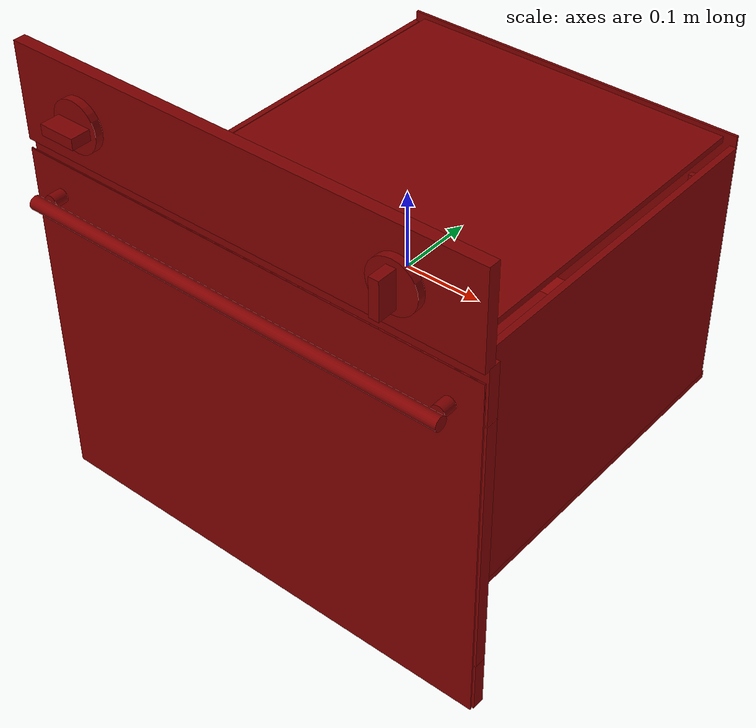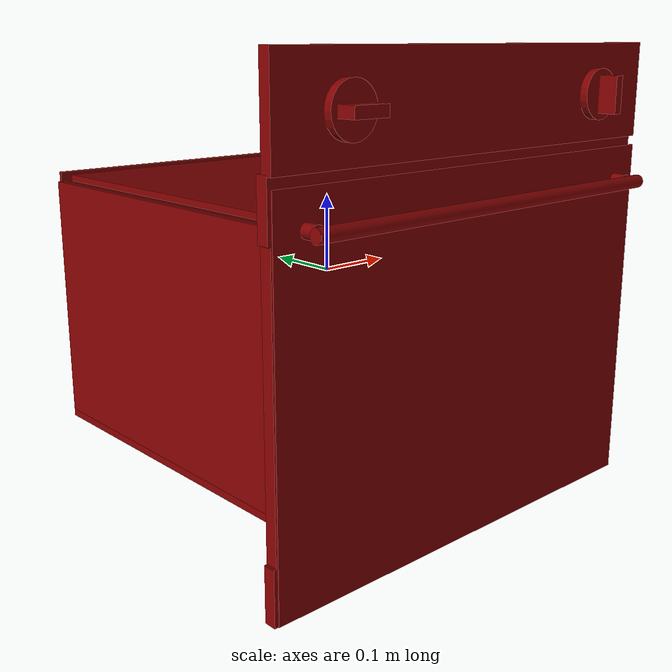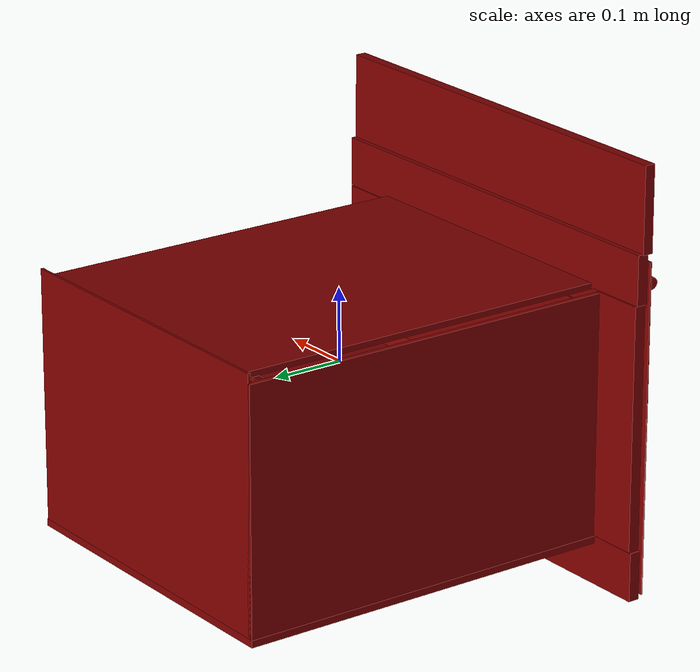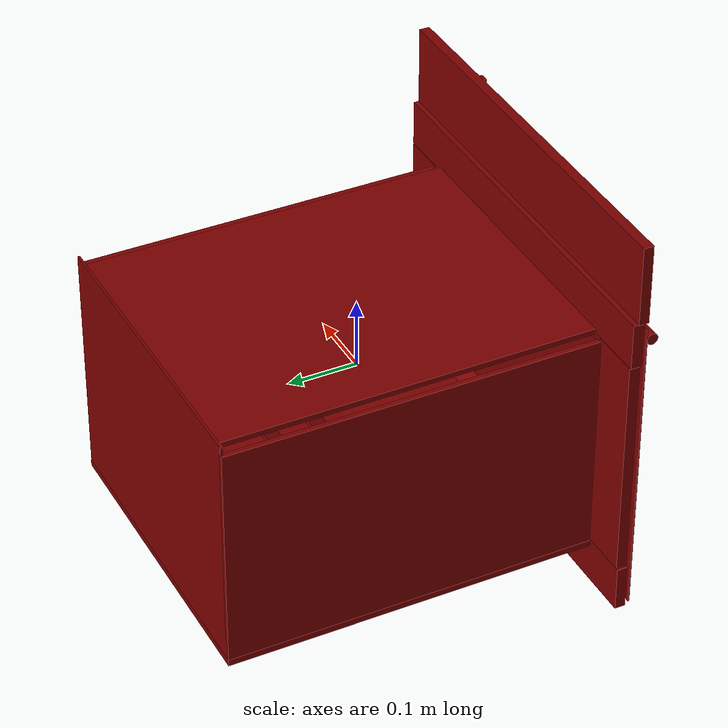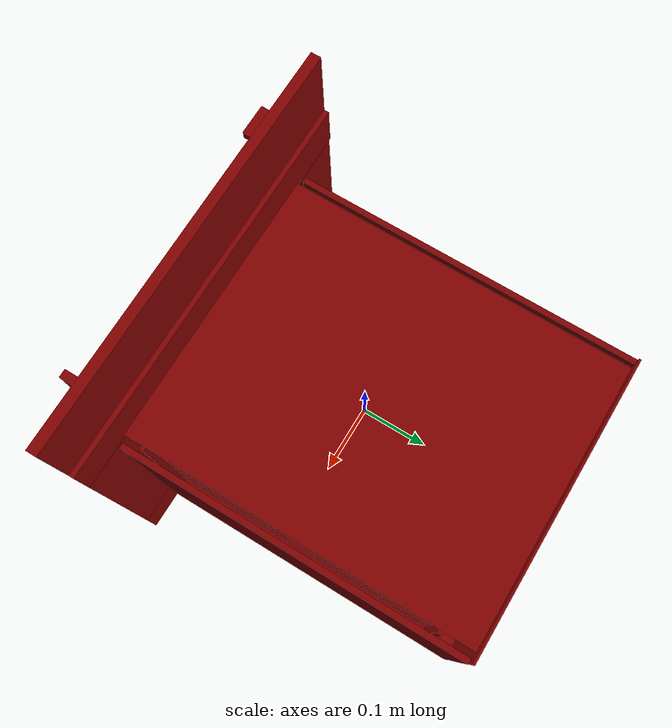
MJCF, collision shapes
<?xml version='1.0' encoding='UTF-8'?>
<mujoco model="model">
  <option timestep="0.002" gravity="0.0 0.0 -9.81"/>
  <compiler angle="radian"/>
  <asset>
    <mesh file="visuals/door.obj" name="door_vis"/>
    <mesh file="visuals/door_Clear.obj" name="door_Clear_vis"/>
    <mesh file="visuals/knob_temp.obj" name="knob_temp_vis"/>
    <mesh file="visuals/knob_time.obj" name="knob_time_vis"/>
    <mesh file="visuals/Body001.obj" name="Body001_vis"/>
    <mesh file="visuals/rack0.obj" name="rack0_vis"/>
    <mesh file="visuals/rack1.obj" name="rack1_vis"/>
    <texture file="visuals/T_BC001.png" name="Body001_material" type="2d"/>
    <material name="Body001_material" rgba="1 1 1 1.0" texture="Body001_material" shininess="2" specular="2"/>
    <texture file="visuals/T_BC001.png" name="door_material" type="2d"/>
    <material name="door_material" rgba="1 1 1 1.0" texture="door_material" shininess="2" specular="2"/>
    <texture file="visuals/T_BC001.png" name="door_Clear_material" type="2d"/>
    <material name="door_Clear_material" rgba="1 1 1 0.800000011920929" texture="door_Clear_material" shininess="0.5" specular="0.3103448502657381"/>
    <texture file="visuals/T_BC001.png" name="knob_temp_material" type="2d"/>
    <material name="knob_temp_material" rgba="1 1 1 1.0" texture="knob_temp_material" shininess="2" specular="2"/>
    <texture file="visuals/T_BC001.png" name="knob_time_material" type="2d"/>
    <material name="knob_time_material" rgba="1 1 1 1.0" texture="knob_time_material" shininess="2" specular="2"/>
    <texture file="visuals/T_BC001.png" name="rack0_material" type="2d"/>
    <material name="rack0_material" rgba="1 1 1 1.0" texture="rack0_material" shininess="10" specular="10"/>
    <texture file="visuals/T_BC001.png" name="rack1_material" type="2d"/>
    <material name="rack1_material" rgba="1 1 1 1.0" texture="rack1_material" shininess="10" specular="10"/>
  </asset>
  <default>
    <default class="visual">
      <geom conaffinity="0" contype="0" group="1" type="mesh"/>
    </default>
    <default class="collision">
      <geom group="0" rgba="0.5 0 0 0.5"/>
    </default>
    <default class="spawn">
      <geom group="0" rgba="1 1 1 0.5" contype="0" conaffinity="0"/>
      <site group="0" rgba="1 1 1 0.5"/>
    </default>
    <default class="region">
      <geom group="1" conaffinity="0" contype="0" rgba="0 1 0 0"/>
    </default>
  </default>
  <worldbody>
    <body>
      <body name="object">
        <geom mesh="Body001_vis" type="mesh" solimp="0.998 0.998 0.001" solref="0.001 1" friction="0.95 0.3 0.1" class="visual" material="Body001_material"/>
        <geom class="collision" type="box" pos="0.004257142543792725 0.29582837224006653 -0.0529102087020874" size="0.22952304780483246 0.0017778400797396898 0.1740211695432663" quat="1.0 0.0 0.0 0.0"/>
        <geom class="collision" type="box" pos="0.23214790225028992 0.02717023715376854 -0.057257432490587234" size="0.0042505525052547455 0.2641582190990448 0.16595187783241272" quat="1.0 0.0 0.0 0.0"/>
        <geom class="collision" type="box" pos="-0.224727064371109 0.029989678412675858 -0.057878464460372925" size="0.0037652181927114725 0.26761651039123535 0.16595187783241272" quat="1.0 0.0 0.0 0.0"/>
        <geom class="collision" type="box" pos="0.003983643371611834 0.024439111351966858 0.11233504116535187" size="0.21423636376857758 0.26748934388160706 0.004080869723111391" quat="1.0 0.0 0.0 0.0"/>
        <geom class="collision" type="box" pos="0.0033500767312943935 0.026148568838834763 -0.22870412468910217" size="0.23182912170886993 0.27145856618881226 0.005052439868450165" quat="1.0 0.0 0.0 0.0"/>
        <geom class="collision" type="box" pos="2.8462620704772235e-08 -0.2542492747306824 0.2345203161239624" size="0.2994057536125183 0.0074152639135718346 0.05844840779900551" quat="1.0 0.0 0.0 0.0"/>
        <geom class="collision" type="box" pos="3.04707867826437e-08 -0.2471369355916977 0.14411506056785583" size="0.2994057536125183 0.0077019804157316685 0.033569641411304474" quat="1.0 0.0 0.0 0.0"/>
        <geom class="collision" type="box" pos="-3.902916745346374e-08 -0.2471369355916977 -0.2575114369392395" size="0.2994057536125183 0.007701977621763945 0.033569641411304474" quat="1.0 0.0 0.0 0.0"/>
        <geom class="collision" type="box" pos="0.2643807530403137 -0.2471369355916977 -0.057232510298490524" size="0.035025034099817276 0.007701974827796221 0.16634026169776917" quat="1.0 0.0 0.0 0.0"/>
        <geom class="collision" type="box" pos="-0.25912341475486755 -0.2471369355916977 -0.057232510298490524" size="0.03709207475185394 0.007701972499489784 0.16634026169776917" quat="1.0 0.0 0.0 0.0"/>
        <geom class="collision" type="box" pos="0.20026057958602905 0.015912054106593132 0.04335138201713562" size="0.013599753379821777 0.023424720391631126 0.003483806736767292" quat="1.0 0.0 0.0 0.0"/>
        <geom class="collision" type="box" pos="-0.20047149062156677 0.013488080352544785 0.04027305543422699" size="0.006780058611184359 0.2276025265455246 0.003483806736767292" quat="1.0 0.0 0.0 0.0"/>
        <geom class="collision" type="box" pos="0.20026057958602905 0.015912054106593132 -0.01690629869699478" size="0.013599753379821777 0.023424720391631126 0.003483806736767292" quat="1.0 0.0 0.0 0.0"/>
        <geom class="collision" type="box" pos="-0.20047149062156677 0.013488080352544785 -0.01998462900519371" size="0.006780058611184359 0.2276025265455246 0.003483806736767292" quat="1.0 0.0 0.0 0.0"/>
        <geom class="collision" type="box" pos="0.20026057958602905 0.015912054106593132 -0.07920662313699722" size="0.013599753379821777 0.023424720391631126 0.003483806736767292" quat="1.0 0.0 0.0 0.0"/>
        <geom class="collision" type="box" pos="-0.20047149062156677 0.013488080352544785 -0.08228495717048645" size="0.006780058611184359 0.2276025265455246 0.003483806736767292" quat="1.0 0.0 0.0 0.0"/>
        <geom class="collision" type="box" pos="0.20026057958602905 0.015912054106593132 -0.14017921686172485" size="0.013599753379821777 0.023424720391631126 0.003483806736767292" quat="1.0 0.0 0.0 0.0"/>
        <geom class="collision" type="box" pos="-0.20047149062156677 0.013488080352544785 -0.14006593823432922" size="0.006780058611184359 0.2276025265455246 0.003483806736767292" quat="1.0 0.0 0.0 0.0"/>
        <geom class="collision" type="box" pos="-0.20226171612739563 0.013488082215189934 0.021582961082458496" size="0.00794237107038498 0.2276025265455246 0.003483806736767292" quat="1.0 0.0 0.0 0.0"/>
        <geom class="collision" type="box" pos="-0.20226171612739563 0.013488082215189934 -0.038674719631671906" size="0.00794237107038498 0.2276025265455246 0.003483806736767292" quat="1.0 0.0 0.0 0.0"/>
        <geom class="collision" type="box" pos="-0.20226171612739563 0.013488082215189934 -0.10097505152225494" size="0.00794237107038498 0.2276025265455246 0.003483806736767292" quat="1.0 0.0 0.0 0.0"/>
        <geom class="collision" type="box" pos="-0.20226171612739563 0.013488082215189934 -0.15875603258609772" size="0.00794237107038498 0.2276025265455246 0.003483806736767292" quat="1.0 0.0 0.0 0.0"/>
        <geom class="collision" type="box" pos="0.2048565149307251 0.012451224029064178 0.024354897439479828" size="0.007159928325563669 0.23121151328086853 0.003483806736767292" quat="1.0 0.0 0.0 0.0"/>
        <geom class="collision" type="box" pos="0.2048565149307251 0.012451224029064178 -0.035902783274650574" size="0.007159928325563669 0.23121151328086853 0.003483806736767292" quat="1.0 0.0 0.0 0.0"/>
        <geom class="collision" type="box" pos="0.2048565149307251 0.012451224029064178 -0.09820310771465302" size="0.007159928325563669 0.23121151328086853 0.003483806736767292" quat="1.0 0.0 0.0 0.0"/>
        <geom class="collision" type="box" pos="0.2048565149307251 0.012451224029064178 -0.15917570888996124" size="0.007159928325563669 0.23121151328086853 0.003483806736767292" quat="1.0 0.0 0.0 0.0"/>
        <geom class="collision" type="box" pos="-0.1949082314968109 0.012826252728700638 0.04027305543422699" size="0.01252143457531929 0.015423857606947422 0.003483806736767292" quat="1.0 0.0 0.0 0.0"/>
        <geom class="collision" type="box" pos="-0.1949082314968109 0.012826252728700638 -0.01998462900519371" size="0.01252143457531929 0.015423857606947422 0.003483806736767292" quat="1.0 0.0 0.0 0.0"/>
        <geom class="collision" type="box" pos="-0.1949082314968109 0.012826252728700638 -0.08228495717048645" size="0.01252143457531929 0.015423857606947422 0.003483806736767292" quat="1.0 0.0 0.0 0.0"/>
        <geom class="collision" type="box" pos="-0.1949082314968109 0.012826252728700638 -0.14006593823432922" size="0.01252143457531929 0.015423857606947422 0.003483806736767292" quat="1.0 0.0 0.0 0.0"/>
        <geom class="collision" type="box" pos="0.2048565149307251 0.012451224029064178 0.0430198609828949" size="0.007159928325563669 0.23121151328086853 0.003483806736767292" quat="1.0 0.0 0.0 0.0"/>
        <geom class="collision" type="box" pos="0.2048565149307251 0.012451224029064178 -0.017237819731235504" size="0.007159928325563669 0.23121151328086853 0.003483806736767292" quat="1.0 0.0 0.0 0.0"/>
        <geom class="collision" type="box" pos="0.2048565149307251 0.012451224029064178 -0.07953814417123795" size="0.007159928325563669 0.23121151328086853 0.003483806736767292" quat="1.0 0.0 0.0 0.0"/>
        <geom class="collision" type="box" pos="0.2048565149307251 0.012451224029064178 -0.14051073789596558" size="0.007159928325563669 0.23121151328086853 0.003483806736767292" quat="1.0 0.0 0.0 0.0"/>
        <geom class="collision" type="box" pos="0.21503008902072906 -0.2173396646976471 -0.052010953426361084" size="0.007159928325563669 0.13969109952449799 0.003483806736767292" quat="0.7071068286895752 0.7071067690849304 -1.5700924318127872e-16 -5.9269340452702814e-24"/>
        <geom class="collision" type="box" pos="0.21503008902072906 0.24395039677619934 -0.052010953426361084" size="0.007159928325563669 0.13969109952449799 0.003483806736767292" quat="0.7071068286895752 0.7071067690849304 -1.5700924318127872e-16 -5.9269340452702814e-24"/>
        <geom class="collision" type="box" pos="-0.20704622566699982 -0.2173396646976471 -0.052010953426361084" size="0.007159928325563669 0.13969109952449799 0.003483806736767292" quat="0.7071068286895752 0.7071067690849304 -1.5700924318127872e-16 -5.9269340452702814e-24"/>
        <geom class="collision" type="box" pos="-0.20704622566699982 0.24395039677619934 -0.052010953426361084" size="0.007159928325563669 0.13969109952449799 0.003483806736767292" quat="0.7071068286895752 0.7071067690849304 -1.5700924318127872e-16 -5.9269340452702814e-24"/>
        <body name="door">
          <joint axis="1.0 0.0 0.0" pos="0.0003371572820469737 -0.26122520730132237 -0.28641705214977264" limited="true" name="door_joint" range="0.0 1.15" type="hinge" damping="1" frictionloss="1" armature="1" stiffness="2" springref="-1"/>
          <geom mesh="door_vis" type="mesh" solimp="0.998 0.998 0.001" solref="0.001 1" friction="0.95 0.3 0.1" class="visual" material="door_material"/>
          <geom class="collision" type="cylinder" pos="0.001624423312023282 -0.28852972388267517 0.12220831215381622" size="0.008250067941844463 0.27126771211624146" quat="0.7071068286895752 1.2101618374060763e-08 0.7071067690849304 -1.2101617485882343e-08" name="door_handle_main"/>
          <geom class="collision" type="box" pos="0.0003371572820469737 -0.26061785221099854 -0.06075669825077057" size="0.2993898391723633 0.0006073550903238356 0.22566035389900208" quat="1.0 0.0 0.0 0.0" name="door_main"/>
          <geom class="collision" type="box" pos="0.0003371572820469737 -0.2583934962749481 -0.06384003907442093" size="0.2099902182817459 0.0012809786712750793 0.13924762606620789" quat="1.0 0.0 0.0 0.0"/>
          <geom class="collision" type="box" pos="0.0003371572820469737 -0.26061785221099854 -0.06075669825077057" size="0.2993898391723633 0.0010464511578902602 0.22566035389900208" quat="1.0 0.0 0.0 0.0"/>
          <geom class="collision" type="cylinder" pos="0.26123130321502686 -0.2699773907661438 0.12220831215381622" size="0.008250067941844463 0.00860155001282692" quat="0.5 0.5 0.4999999701976776 -0.5"/>
          <geom class="collision" type="cylinder" pos="-0.2576301097869873 -0.2699773907661438 0.12220831215381622" size="0.008250067941844463 0.00860155001282692" quat="0.5 0.5 0.4999999701976776 -0.5"/>
          <body name="door_Clear">
            <geom mesh="door_Clear_vis" type="mesh" solimp="0.998 0.998 0.001" solref="0.001 1" friction="0.95 0.3 0.1" class="visual" material="door_Clear_material"/>
            <geom class="collision" type="box" pos="0.0003371572820469737 -0.2583934962749481 -0.06384003907442093" size="0.2099902182817459 0.0012809786712750793 0.13924762606620789" quat="1.0 0.0 0.0 0.0"/>
          </body>
        </body>
        <body name="knob_temp">
          <joint axis="0.0 1.0 0.0" pos="0.20315267145633698 -0.2786499857902527 0.2327795922756195" limited="true" name="knob_temp_joint" range="0.0 5.585053606381854" type="hinge" damping="0.05" armature="1" frictionloss="0.75"/>
          <geom mesh="knob_temp_vis" type="mesh" solimp="0.998 0.998 0.001" solref="0.001 1" friction="0.95 0.3 0.1" class="visual" material="knob_temp_material"/>
          <geom class="collision" type="cylinder" pos="0.20284394919872284 -0.2682937979698181 0.23267494142055511" size="0.03073807619512081 0.0048811412416398525" quat="0.7071067094802856 0.7071068286895752 -1.5700929612083792e-16 2.2148510003422914e-23" friction="100 0.5 0.01"/>
          <geom class="collision" type="box" pos="0.20284393429756165 -0.2843724191188812 0.23267494142055511" size="0.005927907302975655 0.012706436216831207 0.02259235642850399" quat="1.9470718370939721e-07 -6.717942824252532e-08 -1.0 -1.3435884227419592e-07" name="knob_temp_main" friction="100 0.5 0.01"/>
        </body>
        <body name="knob_time">
          <joint axis="0.0 1.0 0.0" pos="-0.20649613440036774 -0.2786499857902527 0.2327795922756195" limited="true" name="knob_time_joint" range="0.0 5.270894341022875" type="hinge" damping="0.05" frictionloss="0.75" armature="1"/>
          <geom mesh="knob_time_vis" type="mesh" solimp="0.998 0.998 0.001" solref="0.001 1" friction="0.95 0.3 0.1" class="visual" material="knob_time_material"/>
          <geom class="collision" type="cylinder" pos="-0.20620454847812653 -0.2682937979698181 0.23267494142055511" size="0.03073807619512081 0.0048811412416398525" quat="0.7071067094802856 0.7071068286895752 -1.5700929612083792e-16 2.2148510003422914e-23" friction="100 0.5 0.01"/>
          <geom class="collision" type="box" pos="-0.20620454847812653 -0.2843724191188812 0.23267494142055511" size="0.0065148877911269665 0.012706436216831207 0.02259235642850399" quat="0.7071068286895752 -4.750302551315144e-08 0.7071067094802856 4.7503014855010406e-08" name="knob_time_main" friction="100 0.5 0.01"/>
        </body>
        <body name="rack0">
          <geom class="region" name="reg_rack0" type="box" pos="0.00031485408544540405 -0.01823389157652855 -0.0840238481760025" size="0.14721704071760178 0.0975353213250637 0.05305988883972168"/>
          <joint axis="0.0 -1.0 0.0" pos="-0.0018711239099502563 -0.020450979471206665 -0.14011718332767487" limited="true" name="rack0_joint" range="0.0 0.28" type="slide" damping="1" frictionloss="1" armature=".01" stiffness="0.05"/>
          <geom mesh="rack0_vis" type="mesh" solimp="0.998 0.998 0.001" solref="0.001 1" friction="0.95 0.3 0.1" class="visual" material="rack0_material"/>
          <geom class="collision" type="box" pos="-0.0007319545838981867 -0.019534630700945854 -0.1443442702293396" size="0.1477791666984558 0.09949837625026703 0.002305444795638323" quat="1.0 0.0 0.0 0.0"/>
          <geom class="collision" type="box" pos="-0.16057223081588745 -0.019534630700945854 -0.1406985968351364" size="0.014118343591690063 0.11484713852405548 0.002305444562807679" quat="0.987217366695404 -1.9065227217454237e-15 0.1593797206878662 2.1414075845882508e-08"/>
          <geom class="collision" type="box" pos="0.1604328155517578 -0.019534630700945854 -0.1406985968351364" size="0.014118343591690063 0.11484713852405548 0.002305444562807679" quat="7.395976808766136e-08 0.1593797206878662 8.48315728774196e-09 -0.987217366695404"/>
          <geom class="collision" type="box" pos="-0.0018965154886245728 0.092120461165905 -0.1406985968351364" size="0.014118343591690063 0.16751767694950104 0.002305444562807679" quat="0.6980680823326111 0.11269848048686981 0.11269848793745041 -0.6980680823326111"/>
          <geom class="collision" type="box" pos="-0.0018965154886245728 -0.1278197169303894 -0.1406985968351364" size="0.014118343591690063 0.16751767694950104 0.002305444562807679" quat="0.6980680823326111 -0.11269848048686981 0.11269848793745041 0.6980680823326111"/>
        </body>
        <body name="rack1">
          <geom class="region" name="reg_rack1" type="box" pos="0.00031485408544540405 -0.01823389157652855 0.04346788255497813" size="0.14721704071760178 0.0975353213250637 0.059100756723433734"/>
          <joint axis="0.0 -1.0 0.0" pos="-0.0018711278680711985 -0.020450979471206665 -0.018302276730537415" limited="true" name="rack1_joint" range="0.0 0.28" type="slide" damping="1" frictionloss="1" armature=".01" stiffness="0.05"/>
          <geom mesh="rack1_vis" type="mesh" solimp="0.998 0.998 0.001" solref="0.001 1" friction="0.95 0.3 0.1" class="visual" material="rack1_material"/>
          <geom class="collision" type="box" pos="-0.0007319545838981867 -0.019534630700945854 -0.02270681783556938" size="0.1477791666984558 0.09949837625026703 0.002305444795638323" quat="1.0 0.0 0.0 0.0"/>
          <geom class="collision" type="box" pos="-0.16057223081588745 -0.019534630700945854 -0.019061144441366196" size="0.014118343591690063 0.11484713852405548 0.002305444562807679" quat="0.987217366695404 -1.9065227217454237e-15 0.1593797206878662 2.1414075845882508e-08"/>
          <geom class="collision" type="box" pos="0.1604328155517578 -0.019534630700945854 -0.019061144441366196" size="0.014118343591690063 0.11484713852405548 0.002305444562807679" quat="7.395976808766136e-08 0.1593797206878662 8.48315728774196e-09 -0.987217366695404"/>
          <geom class="collision" type="box" pos="-0.0018965154886245728 0.092120461165905 -0.019061144441366196" size="0.014118343591690063 0.16751767694950104 0.002305444562807679" quat="0.6980680823326111 0.11269848048686981 0.11269848793745041 -0.6980680823326111"/>
          <geom class="collision" type="box" pos="-0.0018965154886245728 -0.1278197169303894 -0.019061144441366196" size="0.014118343591690063 0.16751767694950104 0.002305444562807679" quat="0.6980680823326111 -0.11269848048686981 0.11269848793745041 0.6980680823326111"/>
        </body>
        <geom class="region" name="reg_int" type="box" pos="0.005122743546962738 0.022759638726711273 -0.05728103965520859" size="0.21342514997720718 0.26641710644960404 0.15656039661169052"/>
        <geom class="region" name="reg_main" type="box" pos="0.0 0.01797104999423027 0.0" size="0.3004058132171631 0.28063533997535706 0.29396907782554627"/>
      </body>
    </body>
  </worldbody>
  <actuator>
    <motor name="door_joint_actuator" joint="door_joint" gear="50"/>
    <motor name="knob_temp_joint_actuator" joint="knob_temp_joint" gear="50"/>
    <motor name="knob_time_joint_actuator" joint="knob_time_joint" gear="50"/>
    <motor name="rack0_joint_actuator" joint="rack0_joint" gear="50"/>
    <motor name="rack1_joint_actuator" joint="rack1_joint" gear="50"/>
  </actuator>
</mujoco>
